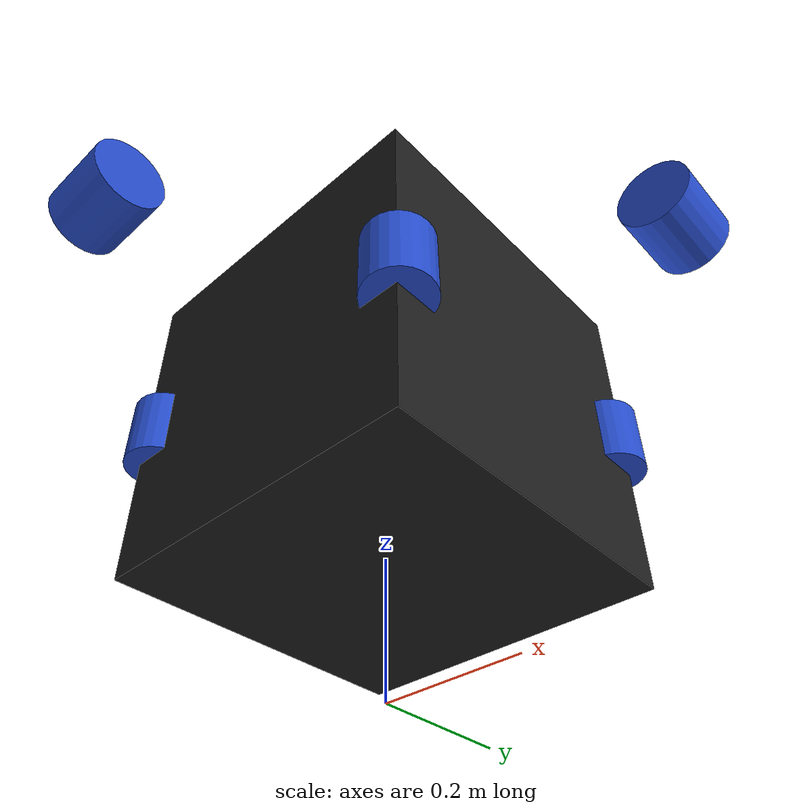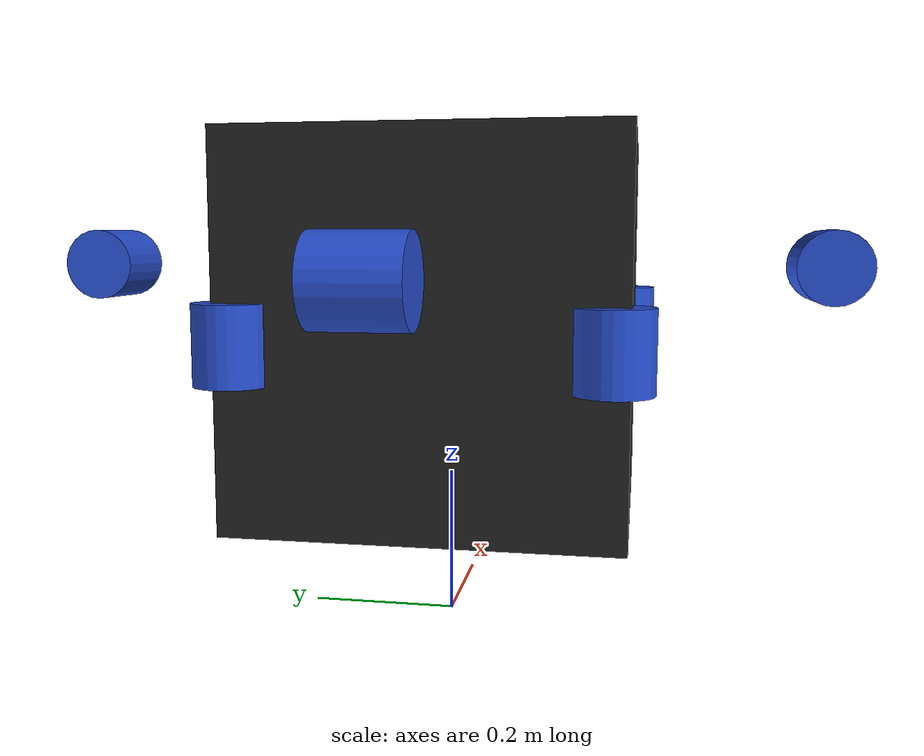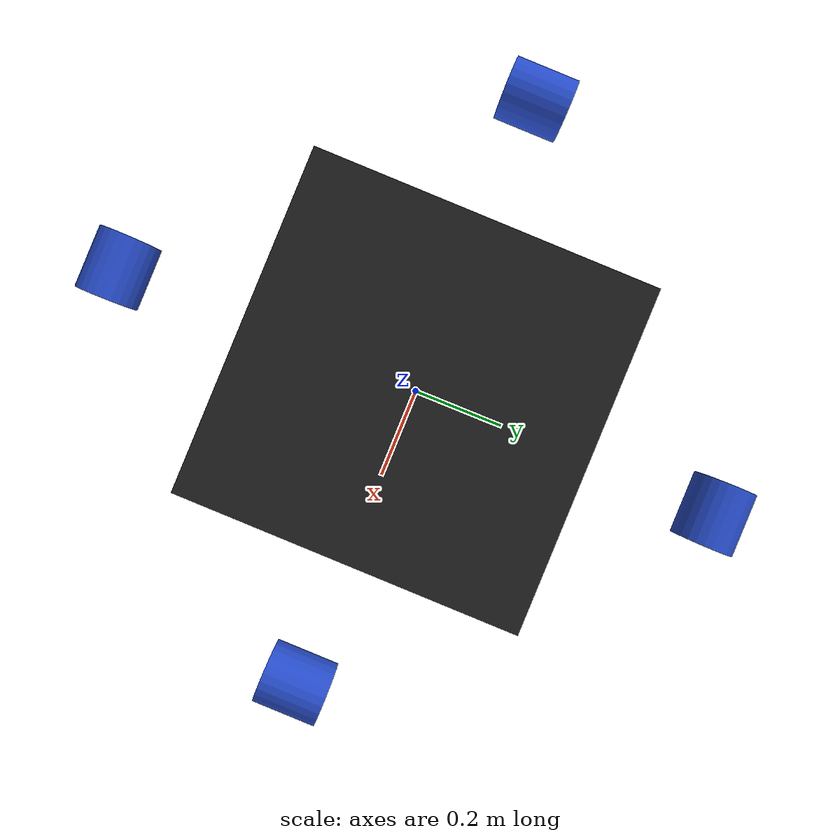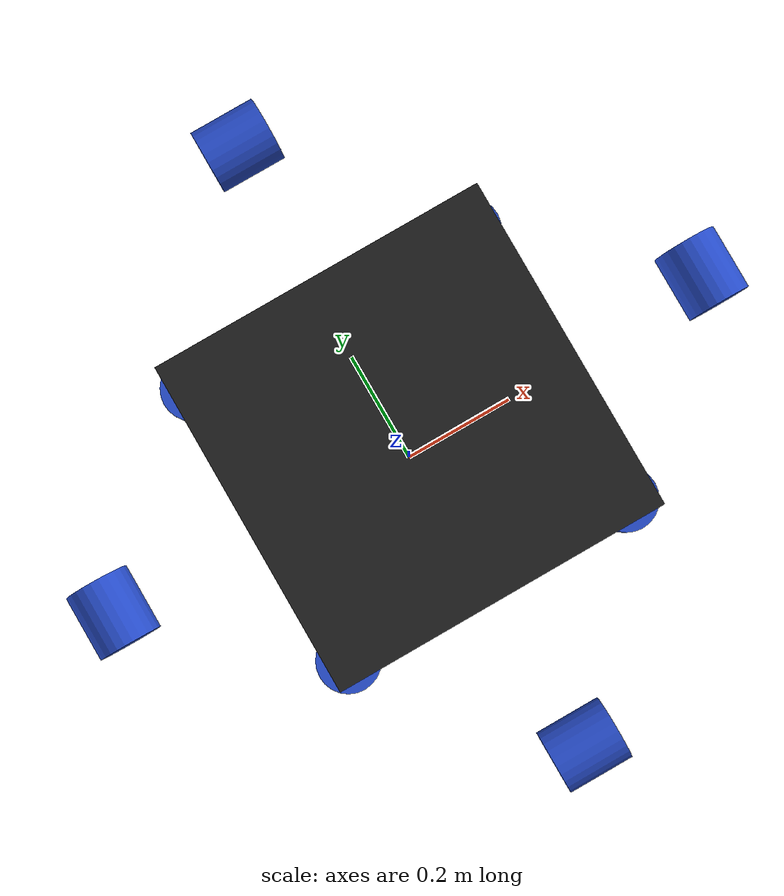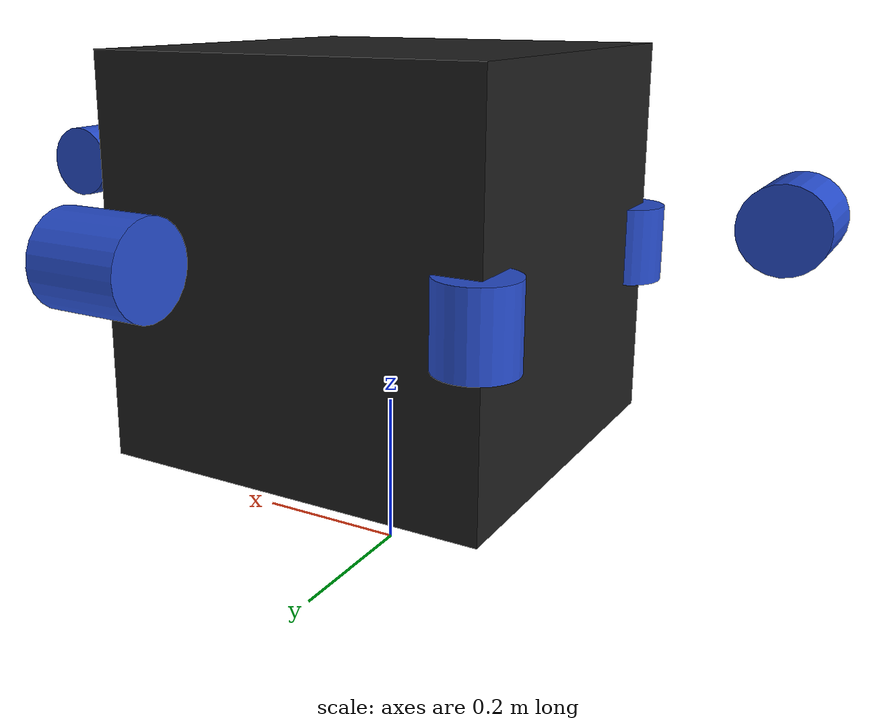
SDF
<?xml version='1.0'?>
<sdf version="1.5">
  <model name="sub_model">
    <pose>0 0 0.5 0 0 0</pose>
    <static>false</static>

    <joint name='dive_front_left_frame' type="fixed">
        <parent>frame</parent>
        <child>dive_front_left</child>
    </joint>

    <joint name='dive_front_right_frame' type="fixed">
        <parent>frame</parent>
        <child>dive_front_right</child>
    </joint>

    <joint name='dive_back_left_frame' type="fixed">
        <parent>frame</parent>
        <child>dive_back_left</child>
    </joint>

    <joint name='dive_back_right_frame' type="fixed">
        <parent>frame</parent>
        <child>dive_back_right</child>
    </joint>

    <joint name='strafe_front_frame' type="fixed">
        <parent>frame</parent>
        <child>strafe_front</child>
    </joint>

    <joint name='strafe_back_frame' type="fixed">
        <parent>frame</parent>
        <child>strafe_back</child>
    </joint>

    <joint name='forward_left_frame' type="fixed">
        <parent>frame</parent>
        <child>forward_left</child>
    </joint>

    <joint name='forward_right_frame' type="fixed">
        <parent>frame</parent>
        <child>forward_right</child>
    </joint>

    <link name='frame'>
      <pose>0 0 -0.088 0 0 0</pose>
      <inertial>
        <mass>16.5</mass>
      </inertial>

      <visual name='frame_visual'>
        <geometry>
              <box>
                <size>.5 .5 .5</size>
              </box>
            </geometry>
          <material>
            <script>
              <uri>file://media/materials/scripts/gazebo.material</uri>
              <name>Gazebo/FlatBlack</name>
            </script>
          </material>
      </visual>

      <collision name='frame_collision'>
        <geometry>
              <box>
                <size>.5 .5 .5</size>
              </box>
            </geometry>
      </collision>
      <velocity_decay>
          <linear>0.002</linear>
          <angular>0.002</angular>
      </velocity_decay>
    </link>

    <link name='dive_front_left'>
      <pose>0.235 0.23 -0.1 0 3.14159 0</pose>
      <inertial>
        <mass>0.344</mass>
      </inertial>
      <visual name='dive_front_left_visual'>
        <geometry>
          <cylinder>
            <radius>0.0485</radius>
            <length>0.101</length>
          </cylinder>
        </geometry>
      <material>
        <script>
          <uri>file://media/materials/scripts/gazebo.material</uri>
          <name>Gazebo/Blue</name>
        </script>
      </material>
      </visual>
      <collision name='dive_front_left_collision'>
        <geometry>
          <cylinder>
            <radius>0.0485</radius>
            <length>0.101</length>
          </cylinder>
        </geometry>
      </collision>
    </link>

    <link name='dive_front_right'>
      <pose>0.235 -0.23 -0.1 0 3.14159 0</pose>
      <inertial>
        <mass>0.344</mass>
      </inertial>
      <visual name='dive_front_right_visual'>
        <geometry>
          <cylinder>
            <radius>0.0485</radius>
            <length>0.101</length>
          </cylinder>
        </geometry>
      <material>
        <script>
          <uri>file://media/materials/scripts/gazebo.material</uri>
          <name>Gazebo/Blue</name>
        </script>
      </material>
      </visual>
      <collision name='dive_front_right_collision'>
        <geometry>
          <cylinder>
            <radius>0.0485</radius>
            <length>0.101</length>
          </cylinder>
        </geometry>
      </collision>
    </link>

    <link name='dive_back_left'>
      <pose>-0.235 0.23 -0.1 0 3.14159 0</pose>
      <inertial>
        <mass>0.344</mass>
      </inertial>
      <visual name='dive_back_left_visual'>
        <geometry>
          <cylinder>
            <radius>0.0485</radius>
            <length>0.101</length>
          </cylinder>
        </geometry>
      <material>
        <script>
          <uri>file://media/materials/scripts/gazebo.material</uri>
          <name>Gazebo/Blue</name>
        </script>
      </material>
      </visual>
      <collision name='dive_back_left_collision'>
        <geometry>
          <cylinder>
            <radius>0.0485</radius>
            <length>0.101</length>
          </cylinder>
        </geometry>
      </collision>
    </link>

    <link name='dive_back_right'>
      <pose>-0.235 -0.23 -0.1 0 3.14159 0</pose>
      <inertial>
        <mass>0.344</mass>
      </inertial>
      <visual name='dive_back_right_visual'>
        <geometry>
          <cylinder>
            <radius>0.0485</radius>
            <length>0.101</length>
          </cylinder>
        </geometry>
      <material>
        <script>
          <uri>file://media/materials/scripts/gazebo.material</uri>
          <name>Gazebo/Blue</name>
        </script>
      </material>
      </visual>
      <collision name='dive_back_right_collision'>
        <geometry>
          <cylinder>
            <radius>0.0485</radius>
            <length>0.101</length>
          </cylinder>
        </geometry>
      </collision>
    </link>

    <link name='strafe_front'>
      <pose>0.49 0 -0.01 -1.57079632679 0 0</pose>
      <inertial>
        <mass>0.344</mass>
      </inertial>
      <visual name='strafe_front_visual'>
        <geometry>
          <cylinder>
            <radius>0.0485</radius>
            <length>0.101</length>
          </cylinder>
        </geometry>
      <material>
        <script>
          <uri>file://media/materials/scripts/gazebo.material</uri>
          <name>Gazebo/Blue</name>
        </script>
      </material>
      </visual>
      <collision name='strafe_front_collision'>
        <geometry>
          <cylinder>
            <radius>0.0485</radius>
            <length>0.101</length>
          </cylinder>
        </geometry>
      </collision>
    </link>

    <link name='strafe_back'>
      <pose>-0.49 0 -0.01 -1.57079632679 0 0</pose>
      <inertial>
        <mass>0.344</mass>
      </inertial>
      <visual name='strafe_back_visual'>
        <geometry>
          <cylinder>
            <radius>0.0485</radius>
            <length>0.101</length>
          </cylinder>
        </geometry>
      <material>
        <script>
          <uri>file://media/materials/scripts/gazebo.material</uri>
          <name>Gazebo/Blue</name>
        </script>
      </material>
      </visual>
      <collision name='strafe_back_collision'>
        <geometry>
          <cylinder>
            <radius>0.0485</radius>
            <length>0.101</length>
          </cylinder>
        </geometry>
      </collision>
    </link>

    <link name='forward_left'>
      <pose>0 0.5 -0.01 0 -1.57079632679 0</pose>
      <inertial>
        <mass>0.344</mass>
      </inertial>
      <visual name='forward_left_visual'>
        <geometry>
          <cylinder>
            <radius>0.0485</radius>
            <length>0.101</length>
          </cylinder>
        </geometry>
      <material>
        <script>
          <uri>file://media/materials/scripts/gazebo.material</uri>
          <name>Gazebo/Blue</name>
        </script>
      </material>
      </visual>
      <collision name='forward_left_collision'>
        <geometry>
          <cylinder>
            <radius>0.0485</radius>
            <length>0.101</length>
          </cylinder>
        </geometry>
      </collision>
    </link>

    <link name='forward_right'>
      <pose>0 -0.5 -0.01 0 -1.57079632679 0</pose>
      <inertial>
        <mass>0.344</mass>
      </inertial>
      <visual name='forward_right_visual'>
        <geometry>
          <cylinder>
            <radius>0.0485</radius>
            <length>0.101</length>
          </cylinder>
        </geometry>
      <material>
        <script>
          <uri>file://media/materials/scripts/gazebo.material</uri>
          <name>Gazebo/Blue</name>
        </script>
      </material>
      </visual>
      <collision name='forward_right_collision'>
        <geometry>
          <cylinder>
            <radius>0.0485</radius>
            <length>0.101</length>
          </cylinder>
        </geometry>
      </collision>
    </link>

    <plugin name="BuoyancyPlugin" filename="libBuoyancyPlugin.so">
	<fluid_density>1000</fluid_density>
      	<!-- thrusters -->
      	<link name="dive_back_right">
     	   	<volume>0.000334</volume>
     	</link>
      	<link name="dive_back_left">
		<volume>0.000334</volume>
      	</link>
      	<link name="dive_front_right">
        	<volume>0.000334</volume>
      	</link>
      	<link name="dive_front_left">
        	<volume>0.000334</volume>
      	</link>
      	<link name="strafe_front">
        	<volume>0.000334</volume>
     	 </link>
      	<link name="strafe_back">
        	<volume>0.000334</volume>
      	</link>
      	<link name="forward_right">
        	<volume>0.000334</volume>
      	</link>
      	<link name="forward_left">
		<volume>0.000334</volume>
      	</link>
    </plugin>
  </model>
</sdf>
